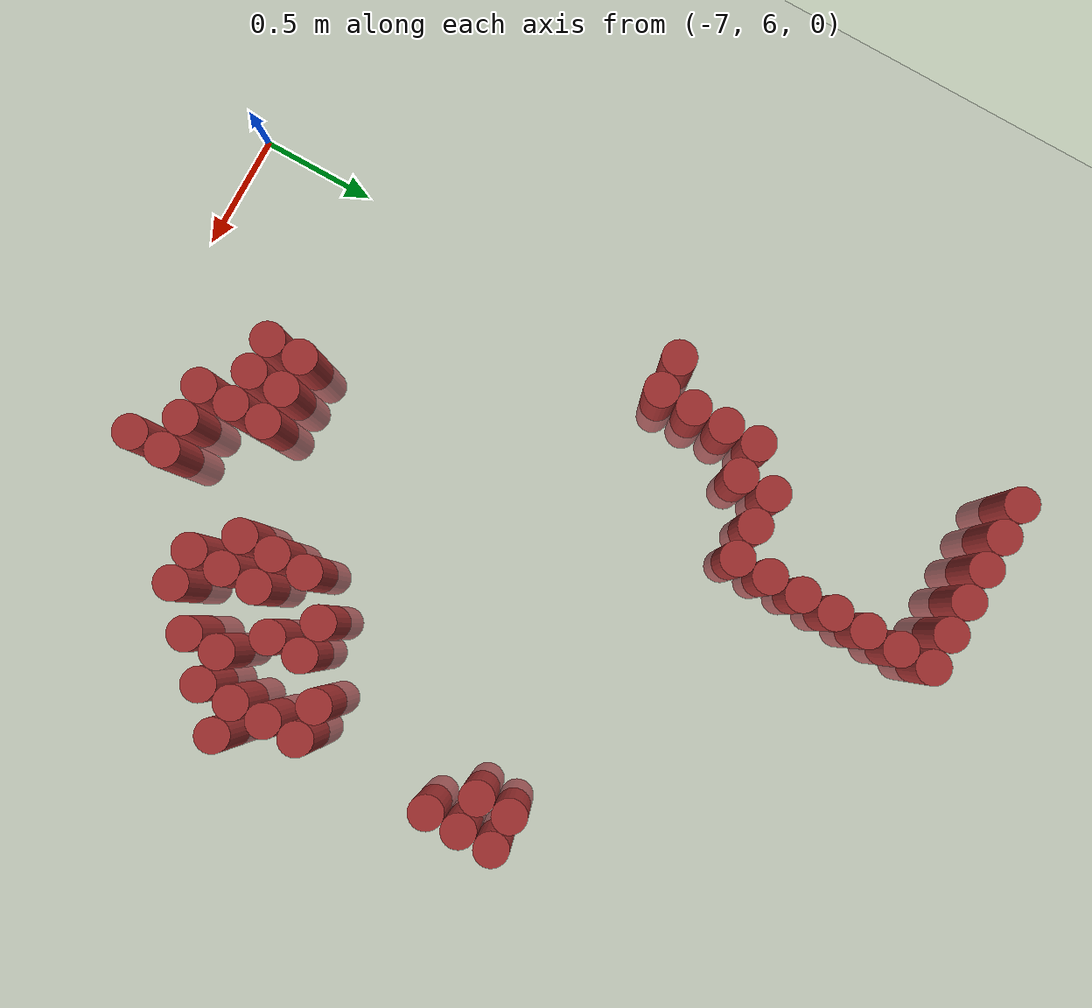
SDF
<sdf version="1.6">
 <world name="default">
  <model name="ground_plane">
   <static>1</static>
   <link name="link">
    <collision name="collision">
     <geometry><plane><normal>0 0 1</normal><size>100 100</size></plane></geometry>
     <surface><friction><ode><mu>100</mu><mu2>50</mu2></ode></friction></surface>
    </collision>
    <visual name="visual">
     <cast_shadows>0</cast_shadows>
     <geometry><plane><normal>0 0 1</normal><size>100 100</size></plane></geometry>
     <material>
      <script><uri>file://media/materials/scripts/gazebo.material</uri><name>Gazebo/Grey</name></script>
     </material>
    </visual>
   </link>
  </model>
  <model name="unit_cylinder_197">
   <static>1</static>
   <pose>-7.125000 9.525000 0.000000 0.000000 0.000000 0.000000</pose>
   <link name="link">
    <inertial>
     <mass>1</mass>
     <inertia><ixx>0.145833</ixx><ixy>0</ixy><ixz>0</ixz><iyy>0.145833</iyy><iyz>0</iyz><izz>0.125</izz></inertia>
    </inertial>
    <collision name="collision">
     <geometry><cylinder><radius>0.075000</radius><length>1</length></cylinder></geometry>
    </collision>
    <visual name="visual">
     <geometry><cylinder><radius>0.075000</radius><length>1</length></cylinder></geometry>
     <material>
      <ambient>0.648000 0.192000 0.192000 1</ambient>
      <diffuse>0.648000 0.192000 0.192000 1</diffuse>
     </material>
     <material>
      <script><name>Gazebo/Grey</name><uri>file://media/materials/scripts/gazebo.material</uri></script>
     </material>
    </visual>
   </link>
  </model>
  <model name="unit_cylinder_202">
   <static>1</static>
   <pose>-6.975000 8.025000 0.000000 0.000000 0.000000 0.000000</pose>
   <link name="link">
    <inertial>
     <mass>1</mass>
     <inertia><ixx>0.145833</ixx><ixy>0</ixy><ixz>0</ixz><iyy>0.145833</iyy><iyz>0</iyz><izz>0.125</izz></inertia>
    </inertial>
    <collision name="collision">
     <geometry><cylinder><radius>0.075000</radius><length>1</length></cylinder></geometry>
    </collision>
    <visual name="visual">
     <geometry><cylinder><radius>0.075000</radius><length>1</length></cylinder></geometry>
     <material>
      <ambient>0.648000 0.192000 0.192000 1</ambient>
      <diffuse>0.648000 0.192000 0.192000 1</diffuse>
     </material>
     <material>
      <script><name>Gazebo/Grey</name><uri>file://media/materials/scripts/gazebo.material</uri></script>
     </material>
    </visual>
   </link>
  </model>
  <model name="unit_cylinder_203">
   <static>1</static>
   <pose>-6.975000 9.525000 0.000000 0.000000 0.000000 0.000000</pose>
   <link name="link">
    <inertial>
     <mass>1</mass>
     <inertia><ixx>0.145833</ixx><ixy>0</ixy><ixz>0</ixz><iyy>0.145833</iyy><iyz>0</iyz><izz>0.125</izz></inertia>
    </inertial>
    <collision name="collision">
     <geometry><cylinder><radius>0.075000</radius><length>1</length></cylinder></geometry>
    </collision>
    <visual name="visual">
     <geometry><cylinder><radius>0.075000</radius><length>1</length></cylinder></geometry>
     <material>
      <ambient>0.648000 0.192000 0.192000 1</ambient>
      <diffuse>0.648000 0.192000 0.192000 1</diffuse>
     </material>
     <material>
      <script><name>Gazebo/Grey</name><uri>file://media/materials/scripts/gazebo.material</uri></script>
     </material>
    </visual>
   </link>
  </model>
  <model name="unit_cylinder_209">
   <static>1</static>
   <pose>-6.825000 8.025000 0.000000 0.000000 0.000000 0.000000</pose>
   <link name="link">
    <inertial>
     <mass>1</mass>
     <inertia><ixx>0.145833</ixx><ixy>0</ixy><ixz>0</ixz><iyy>0.145833</iyy><iyz>0</iyz><izz>0.125</izz></inertia>
    </inertial>
    <collision name="collision">
     <geometry><cylinder><radius>0.075000</radius><length>1</length></cylinder></geometry>
    </collision>
    <visual name="visual">
     <geometry><cylinder><radius>0.075000</radius><length>1</length></cylinder></geometry>
     <material>
      <ambient>0.648000 0.192000 0.192000 1</ambient>
      <diffuse>0.648000 0.192000 0.192000 1</diffuse>
     </material>
     <material>
      <script><name>Gazebo/Grey</name><uri>file://media/materials/scripts/gazebo.material</uri></script>
     </material>
    </visual>
   </link>
  </model>
  <model name="unit_cylinder_210">
   <static>1</static>
   <pose>-6.825000 8.175000 0.000000 0.000000 0.000000 0.000000</pose>
   <link name="link">
    <inertial>
     <mass>1</mass>
     <inertia><ixx>0.145833</ixx><ixy>0</ixy><ixz>0</ixz><iyy>0.145833</iyy><iyz>0</iyz><izz>0.125</izz></inertia>
    </inertial>
    <collision name="collision">
     <geometry><cylinder><radius>0.075000</radius><length>1</length></cylinder></geometry>
    </collision>
    <visual name="visual">
     <geometry><cylinder><radius>0.075000</radius><length>1</length></cylinder></geometry>
     <material>
      <ambient>0.648000 0.192000 0.192000 1</ambient>
      <diffuse>0.648000 0.192000 0.192000 1</diffuse>
     </material>
     <material>
      <script><name>Gazebo/Grey</name><uri>file://media/materials/scripts/gazebo.material</uri></script>
     </material>
    </visual>
   </link>
  </model>
  <model name="unit_cylinder_211">
   <static>1</static>
   <pose>-6.825000 8.325000 0.000000 0.000000 0.000000 0.000000</pose>
   <link name="link">
    <inertial>
     <mass>1</mass>
     <inertia><ixx>0.145833</ixx><ixy>0</ixy><ixz>0</ixz><iyy>0.145833</iyy><iyz>0</iyz><izz>0.125</izz></inertia>
    </inertial>
    <collision name="collision">
     <geometry><cylinder><radius>0.075000</radius><length>1</length></cylinder></geometry>
    </collision>
    <visual name="visual">
     <geometry><cylinder><radius>0.075000</radius><length>1</length></cylinder></geometry>
     <material>
      <ambient>0.648000 0.192000 0.192000 1</ambient>
      <diffuse>0.648000 0.192000 0.192000 1</diffuse>
     </material>
     <material>
      <script><name>Gazebo/Grey</name><uri>file://media/materials/scripts/gazebo.material</uri></script>
     </material>
    </visual>
   </link>
  </model>
  <model name="unit_cylinder_212">
   <static>1</static>
   <pose>-6.825000 8.475000 0.000000 0.000000 0.000000 0.000000</pose>
   <link name="link">
    <inertial>
     <mass>1</mass>
     <inertia><ixx>0.145833</ixx><ixy>0</ixy><ixz>0</ixz><iyy>0.145833</iyy><iyz>0</iyz><izz>0.125</izz></inertia>
    </inertial>
    <collision name="collision">
     <geometry><cylinder><radius>0.075000</radius><length>1</length></cylinder></geometry>
    </collision>
    <visual name="visual">
     <geometry><cylinder><radius>0.075000</radius><length>1</length></cylinder></geometry>
     <material>
      <ambient>0.648000 0.192000 0.192000 1</ambient>
      <diffuse>0.648000 0.192000 0.192000 1</diffuse>
     </material>
     <material>
      <script><name>Gazebo/Grey</name><uri>file://media/materials/scripts/gazebo.material</uri></script>
     </material>
    </visual>
   </link>
  </model>
  <model name="unit_cylinder_213">
   <static>1</static>
   <pose>-6.825000 9.525000 0.000000 0.000000 0.000000 0.000000</pose>
   <link name="link">
    <inertial>
     <mass>1</mass>
     <inertia><ixx>0.145833</ixx><ixy>0</ixy><ixz>0</ixz><iyy>0.145833</iyy><iyz>0</iyz><izz>0.125</izz></inertia>
    </inertial>
    <collision name="collision">
     <geometry><cylinder><radius>0.075000</radius><length>1</length></cylinder></geometry>
    </collision>
    <visual name="visual">
     <geometry><cylinder><radius>0.075000</radius><length>1</length></cylinder></geometry>
     <material>
      <ambient>0.648000 0.192000 0.192000 1</ambient>
      <diffuse>0.648000 0.192000 0.192000 1</diffuse>
     </material>
     <material>
      <script><name>Gazebo/Grey</name><uri>file://media/materials/scripts/gazebo.material</uri></script>
     </material>
    </visual>
   </link>
  </model>
  <model name="unit_cylinder_218">
   <static>1</static>
   <pose>-6.675000 8.475000 0.000000 0.000000 0.000000 0.000000</pose>
   <link name="link">
    <inertial>
     <mass>1</mass>
     <inertia><ixx>0.145833</ixx><ixy>0</ixy><ixz>0</ixz><iyy>0.145833</iyy><iyz>0</iyz><izz>0.125</izz></inertia>
    </inertial>
    <collision name="collision">
     <geometry><cylinder><radius>0.075000</radius><length>1</length></cylinder></geometry>
    </collision>
    <visual name="visual">
     <geometry><cylinder><radius>0.075000</radius><length>1</length></cylinder></geometry>
     <material>
      <ambient>0.648000 0.192000 0.192000 1</ambient>
      <diffuse>0.648000 0.192000 0.192000 1</diffuse>
     </material>
     <material>
      <script><name>Gazebo/Grey</name><uri>file://media/materials/scripts/gazebo.material</uri></script>
     </material>
    </visual>
   </link>
  </model>
  <model name="unit_cylinder_219">
   <static>1</static>
   <pose>-6.675000 8.625000 0.000000 0.000000 0.000000 0.000000</pose>
   <link name="link">
    <inertial>
     <mass>1</mass>
     <inertia><ixx>0.145833</ixx><ixy>0</ixy><ixz>0</ixz><iyy>0.145833</iyy><iyz>0</iyz><izz>0.125</izz></inertia>
    </inertial>
    <collision name="collision">
     <geometry><cylinder><radius>0.075000</radius><length>1</length></cylinder></geometry>
    </collision>
    <visual name="visual">
     <geometry><cylinder><radius>0.075000</radius><length>1</length></cylinder></geometry>
     <material>
      <ambient>0.648000 0.192000 0.192000 1</ambient>
      <diffuse>0.648000 0.192000 0.192000 1</diffuse>
     </material>
     <material>
      <script><name>Gazebo/Grey</name><uri>file://media/materials/scripts/gazebo.material</uri></script>
     </material>
    </visual>
   </link>
  </model>
  <model name="unit_cylinder_220">
   <static>1</static>
   <pose>-6.675000 9.525000 0.000000 0.000000 0.000000 0.000000</pose>
   <link name="link">
    <inertial>
     <mass>1</mass>
     <inertia><ixx>0.145833</ixx><ixy>0</ixy><ixz>0</ixz><iyy>0.145833</iyy><iyz>0</iyz><izz>0.125</izz></inertia>
    </inertial>
    <collision name="collision">
     <geometry><cylinder><radius>0.075000</radius><length>1</length></cylinder></geometry>
    </collision>
    <visual name="visual">
     <geometry><cylinder><radius>0.075000</radius><length>1</length></cylinder></geometry>
     <material>
      <ambient>0.648000 0.192000 0.192000 1</ambient>
      <diffuse>0.648000 0.192000 0.192000 1</diffuse>
     </material>
     <material>
      <script><name>Gazebo/Grey</name><uri>file://media/materials/scripts/gazebo.material</uri></script>
     </material>
    </visual>
   </link>
  </model>
  <model name="unit_cylinder_224">
   <static>1</static>
   <pose>-6.525000 8.625000 0.000000 0.000000 0.000000 0.000000</pose>
   <link name="link">
    <inertial>
     <mass>1</mass>
     <inertia><ixx>0.145833</ixx><ixy>0</ixy><ixz>0</ixz><iyy>0.145833</iyy><iyz>0</iyz><izz>0.125</izz></inertia>
    </inertial>
    <collision name="collision">
     <geometry><cylinder><radius>0.075000</radius><length>1</length></cylinder></geometry>
    </collision>
    <visual name="visual">
     <geometry><cylinder><radius>0.075000</radius><length>1</length></cylinder></geometry>
     <material>
      <ambient>0.648000 0.192000 0.192000 1</ambient>
      <diffuse>0.648000 0.192000 0.192000 1</diffuse>
     </material>
     <material>
      <script><name>Gazebo/Grey</name><uri>file://media/materials/scripts/gazebo.material</uri></script>
     </material>
    </visual>
   </link>
  </model>
  <model name="unit_cylinder_225">
   <static>1</static>
   <pose>-6.525000 9.525000 0.000000 0.000000 0.000000 0.000000</pose>
   <link name="link">
    <inertial>
     <mass>1</mass>
     <inertia><ixx>0.145833</ixx><ixy>0</ixy><ixz>0</ixz><iyy>0.145833</iyy><iyz>0</iyz><izz>0.125</izz></inertia>
    </inertial>
    <collision name="collision">
     <geometry><cylinder><radius>0.075000</radius><length>1</length></cylinder></geometry>
    </collision>
    <visual name="visual">
     <geometry><cylinder><radius>0.075000</radius><length>1</length></cylinder></geometry>
     <material>
      <ambient>0.648000 0.192000 0.192000 1</ambient>
      <diffuse>0.648000 0.192000 0.192000 1</diffuse>
     </material>
     <material>
      <script><name>Gazebo/Grey</name><uri>file://media/materials/scripts/gazebo.material</uri></script>
     </material>
    </visual>
   </link>
  </model>
  <model name="unit_cylinder_229">
   <static>1</static>
   <pose>-6.375000 8.625000 0.000000 0.000000 0.000000 0.000000</pose>
   <link name="link">
    <inertial>
     <mass>1</mass>
     <inertia><ixx>0.145833</ixx><ixy>0</ixy><ixz>0</ixz><iyy>0.145833</iyy><iyz>0</iyz><izz>0.125</izz></inertia>
    </inertial>
    <collision name="collision">
     <geometry><cylinder><radius>0.075000</radius><length>1</length></cylinder></geometry>
    </collision>
    <visual name="visual">
     <geometry><cylinder><radius>0.075000</radius><length>1</length></cylinder></geometry>
     <material>
      <ambient>0.648000 0.192000 0.192000 1</ambient>
      <diffuse>0.648000 0.192000 0.192000 1</diffuse>
     </material>
     <material>
      <script><name>Gazebo/Grey</name><uri>file://media/materials/scripts/gazebo.material</uri></script>
     </material>
    </visual>
   </link>
  </model>
  <model name="unit_cylinder_230">
   <static>1</static>
   <pose>-6.375000 8.775000 0.000000 0.000000 0.000000 0.000000</pose>
   <link name="link">
    <inertial>
     <mass>1</mass>
     <inertia><ixx>0.145833</ixx><ixy>0</ixy><ixz>0</ixz><iyy>0.145833</iyy><iyz>0</iyz><izz>0.125</izz></inertia>
    </inertial>
    <collision name="collision">
     <geometry><cylinder><radius>0.075000</radius><length>1</length></cylinder></geometry>
    </collision>
    <visual name="visual">
     <geometry><cylinder><radius>0.075000</radius><length>1</length></cylinder></geometry>
     <material>
      <ambient>0.648000 0.192000 0.192000 1</ambient>
      <diffuse>0.648000 0.192000 0.192000 1</diffuse>
     </material>
     <material>
      <script><name>Gazebo/Grey</name><uri>file://media/materials/scripts/gazebo.material</uri></script>
     </material>
    </visual>
   </link>
  </model>
  <model name="unit_cylinder_231">
   <static>1</static>
   <pose>-6.375000 8.925000 0.000000 0.000000 0.000000 0.000000</pose>
   <link name="link">
    <inertial>
     <mass>1</mass>
     <inertia><ixx>0.145833</ixx><ixy>0</ixy><ixz>0</ixz><iyy>0.145833</iyy><iyz>0</iyz><izz>0.125</izz></inertia>
    </inertial>
    <collision name="collision">
     <geometry><cylinder><radius>0.075000</radius><length>1</length></cylinder></geometry>
    </collision>
    <visual name="visual">
     <geometry><cylinder><radius>0.075000</radius><length>1</length></cylinder></geometry>
     <material>
      <ambient>0.648000 0.192000 0.192000 1</ambient>
      <diffuse>0.648000 0.192000 0.192000 1</diffuse>
     </material>
     <material>
      <script><name>Gazebo/Grey</name><uri>file://media/materials/scripts/gazebo.material</uri></script>
     </material>
    </visual>
   </link>
  </model>
  <model name="unit_cylinder_232">
   <static>1</static>
   <pose>-6.375000 9.075000 0.000000 0.000000 0.000000 0.000000</pose>
   <link name="link">
    <inertial>
     <mass>1</mass>
     <inertia><ixx>0.145833</ixx><ixy>0</ixy><ixz>0</ixz><iyy>0.145833</iyy><iyz>0</iyz><izz>0.125</izz></inertia>
    </inertial>
    <collision name="collision">
     <geometry><cylinder><radius>0.075000</radius><length>1</length></cylinder></geometry>
    </collision>
    <visual name="visual">
     <geometry><cylinder><radius>0.075000</radius><length>1</length></cylinder></geometry>
     <material>
      <ambient>0.648000 0.192000 0.192000 1</ambient>
      <diffuse>0.648000 0.192000 0.192000 1</diffuse>
     </material>
     <material>
      <script><name>Gazebo/Grey</name><uri>file://media/materials/scripts/gazebo.material</uri></script>
     </material>
    </visual>
   </link>
  </model>
  <model name="unit_cylinder_233">
   <static>1</static>
   <pose>-6.375000 9.225000 0.000000 0.000000 0.000000 0.000000</pose>
   <link name="link">
    <inertial>
     <mass>1</mass>
     <inertia><ixx>0.145833</ixx><ixy>0</ixy><ixz>0</ixz><iyy>0.145833</iyy><iyz>0</iyz><izz>0.125</izz></inertia>
    </inertial>
    <collision name="collision">
     <geometry><cylinder><radius>0.075000</radius><length>1</length></cylinder></geometry>
    </collision>
    <visual name="visual">
     <geometry><cylinder><radius>0.075000</radius><length>1</length></cylinder></geometry>
     <material>
      <ambient>0.648000 0.192000 0.192000 1</ambient>
      <diffuse>0.648000 0.192000 0.192000 1</diffuse>
     </material>
     <material>
      <script><name>Gazebo/Grey</name><uri>file://media/materials/scripts/gazebo.material</uri></script>
     </material>
    </visual>
   </link>
  </model>
  <model name="unit_cylinder_234">
   <static>1</static>
   <pose>-6.375000 9.375000 0.000000 0.000000 0.000000 0.000000</pose>
   <link name="link">
    <inertial>
     <mass>1</mass>
     <inertia><ixx>0.145833</ixx><ixy>0</ixy><ixz>0</ixz><iyy>0.145833</iyy><iyz>0</iyz><izz>0.125</izz></inertia>
    </inertial>
    <collision name="collision">
     <geometry><cylinder><radius>0.075000</radius><length>1</length></cylinder></geometry>
    </collision>
    <visual name="visual">
     <geometry><cylinder><radius>0.075000</radius><length>1</length></cylinder></geometry>
     <material>
      <ambient>0.648000 0.192000 0.192000 1</ambient>
      <diffuse>0.648000 0.192000 0.192000 1</diffuse>
     </material>
     <material>
      <script><name>Gazebo/Grey</name><uri>file://media/materials/scripts/gazebo.material</uri></script>
     </material>
    </visual>
   </link>
  </model>
  <model name="unit_cylinder_235">
   <static>1</static>
   <pose>-6.375000 9.525000 0.000000 0.000000 0.000000 0.000000</pose>
   <link name="link">
    <inertial>
     <mass>1</mass>
     <inertia><ixx>0.145833</ixx><ixy>0</ixy><ixz>0</ixz><iyy>0.145833</iyy><iyz>0</iyz><izz>0.125</izz></inertia>
    </inertial>
    <collision name="collision">
     <geometry><cylinder><radius>0.075000</radius><length>1</length></cylinder></geometry>
    </collision>
    <visual name="visual">
     <geometry><cylinder><radius>0.075000</radius><length>1</length></cylinder></geometry>
     <material>
      <ambient>0.648000 0.192000 0.192000 1</ambient>
      <diffuse>0.648000 0.192000 0.192000 1</diffuse>
     </material>
     <material>
      <script><name>Gazebo/Grey</name><uri>file://media/materials/scripts/gazebo.material</uri></script>
     </material>
    </visual>
   </link>
  </model>
  <model name="unit_cylinder_236">
   <static>1</static>
   <pose>-6.225000 6.525000 0.000000 0.000000 0.000000 0.000000</pose>
   <link name="link">
    <inertial>
     <mass>1</mass>
     <inertia><ixx>0.145833</ixx><ixy>0</ixy><ixz>0</ixz><iyy>0.145833</iyy><iyz>0</iyz><izz>0.125</izz></inertia>
    </inertial>
    <collision name="collision">
     <geometry><cylinder><radius>0.075000</radius><length>1</length></cylinder></geometry>
    </collision>
    <visual name="visual">
     <geometry><cylinder><radius>0.075000</radius><length>1</length></cylinder></geometry>
     <material>
      <ambient>0.648000 0.192000 0.192000 1</ambient>
      <diffuse>0.648000 0.192000 0.192000 1</diffuse>
     </material>
     <material>
      <script><name>Gazebo/Grey</name><uri>file://media/materials/scripts/gazebo.material</uri></script>
     </material>
    </visual>
   </link>
  </model>
  <model name="unit_cylinder_237">
   <static>1</static>
   <pose>-6.225000 6.675000 0.000000 0.000000 0.000000 0.000000</pose>
   <link name="link">
    <inertial>
     <mass>1</mass>
     <inertia><ixx>0.145833</ixx><ixy>0</ixy><ixz>0</ixz><iyy>0.145833</iyy><iyz>0</iyz><izz>0.125</izz></inertia>
    </inertial>
    <collision name="collision">
     <geometry><cylinder><radius>0.075000</radius><length>1</length></cylinder></geometry>
    </collision>
    <visual name="visual">
     <geometry><cylinder><radius>0.075000</radius><length>1</length></cylinder></geometry>
     <material>
      <ambient>0.648000 0.192000 0.192000 1</ambient>
      <diffuse>0.648000 0.192000 0.192000 1</diffuse>
     </material>
     <material>
      <script><name>Gazebo/Grey</name><uri>file://media/materials/scripts/gazebo.material</uri></script>
     </material>
    </visual>
   </link>
  </model>
  <model name="unit_cylinder_238">
   <static>1</static>
   <pose>-6.075000 6.525000 0.000000 0.000000 0.000000 0.000000</pose>
   <link name="link">
    <inertial>
     <mass>1</mass>
     <inertia><ixx>0.145833</ixx><ixy>0</ixy><ixz>0</ixz><iyy>0.145833</iyy><iyz>0</iyz><izz>0.125</izz></inertia>
    </inertial>
    <collision name="collision">
     <geometry><cylinder><radius>0.075000</radius><length>1</length></cylinder></geometry>
    </collision>
    <visual name="visual">
     <geometry><cylinder><radius>0.075000</radius><length>1</length></cylinder></geometry>
     <material>
      <ambient>0.648000 0.192000 0.192000 1</ambient>
      <diffuse>0.648000 0.192000 0.192000 1</diffuse>
     </material>
     <material>
      <script><name>Gazebo/Grey</name><uri>file://media/materials/scripts/gazebo.material</uri></script>
     </material>
    </visual>
   </link>
  </model>
  <model name="unit_cylinder_239">
   <static>1</static>
   <pose>-6.075000 6.675000 0.000000 0.000000 0.000000 0.000000</pose>
   <link name="link">
    <inertial>
     <mass>1</mass>
     <inertia><ixx>0.145833</ixx><ixy>0</ixy><ixz>0</ixz><iyy>0.145833</iyy><iyz>0</iyz><izz>0.125</izz></inertia>
    </inertial>
    <collision name="collision">
     <geometry><cylinder><radius>0.075000</radius><length>1</length></cylinder></geometry>
    </collision>
    <visual name="visual">
     <geometry><cylinder><radius>0.075000</radius><length>1</length></cylinder></geometry>
     <material>
      <ambient>0.648000 0.192000 0.192000 1</ambient>
      <diffuse>0.648000 0.192000 0.192000 1</diffuse>
     </material>
     <material>
      <script><name>Gazebo/Grey</name><uri>file://media/materials/scripts/gazebo.material</uri></script>
     </material>
    </visual>
   </link>
  </model>
  <model name="unit_cylinder_240">
   <static>1</static>
   <pose>-5.925000 6.375000 0.000000 0.000000 0.000000 0.000000</pose>
   <link name="link">
    <inertial>
     <mass>1</mass>
     <inertia><ixx>0.145833</ixx><ixy>0</ixy><ixz>0</ixz><iyy>0.145833</iyy><iyz>0</iyz><izz>0.125</izz></inertia>
    </inertial>
    <collision name="collision">
     <geometry><cylinder><radius>0.075000</radius><length>1</length></cylinder></geometry>
    </collision>
    <visual name="visual">
     <geometry><cylinder><radius>0.075000</radius><length>1</length></cylinder></geometry>
     <material>
      <ambient>0.648000 0.192000 0.192000 1</ambient>
      <diffuse>0.648000 0.192000 0.192000 1</diffuse>
     </material>
     <material>
      <script><name>Gazebo/Grey</name><uri>file://media/materials/scripts/gazebo.material</uri></script>
     </material>
    </visual>
   </link>
  </model>
  <model name="unit_cylinder_241">
   <static>1</static>
   <pose>-5.925000 6.525000 0.000000 0.000000 0.000000 0.000000</pose>
   <link name="link">
    <inertial>
     <mass>1</mass>
     <inertia><ixx>0.145833</ixx><ixy>0</ixy><ixz>0</ixz><iyy>0.145833</iyy><iyz>0</iyz><izz>0.125</izz></inertia>
    </inertial>
    <collision name="collision">
     <geometry><cylinder><radius>0.075000</radius><length>1</length></cylinder></geometry>
    </collision>
    <visual name="visual">
     <geometry><cylinder><radius>0.075000</radius><length>1</length></cylinder></geometry>
     <material>
      <ambient>0.648000 0.192000 0.192000 1</ambient>
      <diffuse>0.648000 0.192000 0.192000 1</diffuse>
     </material>
     <material>
      <script><name>Gazebo/Grey</name><uri>file://media/materials/scripts/gazebo.material</uri></script>
     </material>
    </visual>
   </link>
  </model>
  <model name="unit_cylinder_242">
   <static>1</static>
   <pose>-5.925000 6.675000 0.000000 0.000000 0.000000 0.000000</pose>
   <link name="link">
    <inertial>
     <mass>1</mass>
     <inertia><ixx>0.145833</ixx><ixy>0</ixy><ixz>0</ixz><iyy>0.145833</iyy><iyz>0</iyz><izz>0.125</izz></inertia>
    </inertial>
    <collision name="collision">
     <geometry><cylinder><radius>0.075000</radius><length>1</length></cylinder></geometry>
    </collision>
    <visual name="visual">
     <geometry><cylinder><radius>0.075000</radius><length>1</length></cylinder></geometry>
     <material>
      <ambient>0.648000 0.192000 0.192000 1</ambient>
      <diffuse>0.648000 0.192000 0.192000 1</diffuse>
     </material>
     <material>
      <script><name>Gazebo/Grey</name><uri>file://media/materials/scripts/gazebo.material</uri></script>
     </material>
    </visual>
   </link>
  </model>
  <model name="unit_cylinder_245">
   <static>1</static>
   <pose>-5.775000 6.375000 0.000000 0.000000 0.000000 0.000000</pose>
   <link name="link">
    <inertial>
     <mass>1</mass>
     <inertia><ixx>0.145833</ixx><ixy>0</ixy><ixz>0</ixz><iyy>0.145833</iyy><iyz>0</iyz><izz>0.125</izz></inertia>
    </inertial>
    <collision name="collision">
     <geometry><cylinder><radius>0.075000</radius><length>1</length></cylinder></geometry>
    </collision>
    <visual name="visual">
     <geometry><cylinder><radius>0.075000</radius><length>1</length></cylinder></geometry>
     <material>
      <ambient>0.648000 0.192000 0.192000 1</ambient>
      <diffuse>0.648000 0.192000 0.192000 1</diffuse>
     </material>
     <material>
      <script><name>Gazebo/Grey</name><uri>file://media/materials/scripts/gazebo.material</uri></script>
     </material>
    </visual>
   </link>
  </model>
  <model name="unit_cylinder_247">
   <static>1</static>
   <pose>-5.625000 6.225000 0.000000 0.000000 0.000000 0.000000</pose>
   <link name="link">
    <inertial>
     <mass>1</mass>
     <inertia><ixx>0.145833</ixx><ixy>0</ixy><ixz>0</ixz><iyy>0.145833</iyy><iyz>0</iyz><izz>0.125</izz></inertia>
    </inertial>
    <collision name="collision">
     <geometry><cylinder><radius>0.075000</radius><length>1</length></cylinder></geometry>
    </collision>
    <visual name="visual">
     <geometry><cylinder><radius>0.075000</radius><length>1</length></cylinder></geometry>
     <material>
      <ambient>0.648000 0.192000 0.192000 1</ambient>
      <diffuse>0.648000 0.192000 0.192000 1</diffuse>
     </material>
     <material>
      <script><name>Gazebo/Grey</name><uri>file://media/materials/scripts/gazebo.material</uri></script>
     </material>
    </visual>
   </link>
  </model>
  <model name="unit_cylinder_248">
   <static>1</static>
   <pose>-5.625000 6.375000 0.000000 0.000000 0.000000 0.000000</pose>
   <link name="link">
    <inertial>
     <mass>1</mass>
     <inertia><ixx>0.145833</ixx><ixy>0</ixy><ixz>0</ixz><iyy>0.145833</iyy><iyz>0</iyz><izz>0.125</izz></inertia>
    </inertial>
    <collision name="collision">
     <geometry><cylinder><radius>0.075000</radius><length>1</length></cylinder></geometry>
    </collision>
    <visual name="visual">
     <geometry><cylinder><radius>0.075000</radius><length>1</length></cylinder></geometry>
     <material>
      <ambient>0.648000 0.192000 0.192000 1</ambient>
      <diffuse>0.648000 0.192000 0.192000 1</diffuse>
     </material>
     <material>
      <script><name>Gazebo/Grey</name><uri>file://media/materials/scripts/gazebo.material</uri></script>
     </material>
    </visual>
   </link>
  </model>
  <model name="unit_cylinder_249">
   <static>1</static>
   <pose>-5.475000 6.825000 0.000000 0.000000 0.000000 0.000000</pose>
   <link name="link">
    <inertial>
     <mass>1</mass>
     <inertia><ixx>0.145833</ixx><ixy>0</ixy><ixz>0</ixz><iyy>0.145833</iyy><iyz>0</iyz><izz>0.125</izz></inertia>
    </inertial>
    <collision name="collision">
     <geometry><cylinder><radius>0.075000</radius><length>1</length></cylinder></geometry>
    </collision>
    <visual name="visual">
     <geometry><cylinder><radius>0.075000</radius><length>1</length></cylinder></geometry>
     <material>
      <ambient>0.648000 0.192000 0.192000 1</ambient>
      <diffuse>0.648000 0.192000 0.192000 1</diffuse>
     </material>
     <material>
      <script><name>Gazebo/Grey</name><uri>file://media/materials/scripts/gazebo.material</uri></script>
     </material>
    </visual>
   </link>
  </model>
  <model name="unit_cylinder_250">
   <static>1</static>
   <pose>-5.475000 6.975000 0.000000 0.000000 0.000000 0.000000</pose>
   <link name="link">
    <inertial>
     <mass>1</mass>
     <inertia><ixx>0.145833</ixx><ixy>0</ixy><ixz>0</ixz><iyy>0.145833</iyy><iyz>0</iyz><izz>0.125</izz></inertia>
    </inertial>
    <collision name="collision">
     <geometry><cylinder><radius>0.075000</radius><length>1</length></cylinder></geometry>
    </collision>
    <visual name="visual">
     <geometry><cylinder><radius>0.075000</radius><length>1</length></cylinder></geometry>
     <material>
      <ambient>0.648000 0.192000 0.192000 1</ambient>
      <diffuse>0.648000 0.192000 0.192000 1</diffuse>
     </material>
     <material>
      <script><name>Gazebo/Grey</name><uri>file://media/materials/scripts/gazebo.material</uri></script>
     </material>
    </visual>
   </link>
  </model>
  <model name="unit_cylinder_251">
   <static>1</static>
   <pose>-5.475000 7.125000 0.000000 0.000000 0.000000 0.000000</pose>
   <link name="link">
    <inertial>
     <mass>1</mass>
     <inertia><ixx>0.145833</ixx><ixy>0</ixy><ixz>0</ixz><iyy>0.145833</iyy><iyz>0</iyz><izz>0.125</izz></inertia>
    </inertial>
    <collision name="collision">
     <geometry><cylinder><radius>0.075000</radius><length>1</length></cylinder></geometry>
    </collision>
    <visual name="visual">
     <geometry><cylinder><radius>0.075000</radius><length>1</length></cylinder></geometry>
     <material>
      <ambient>0.648000 0.192000 0.192000 1</ambient>
      <diffuse>0.648000 0.192000 0.192000 1</diffuse>
     </material>
     <material>
      <script><name>Gazebo/Grey</name><uri>file://media/materials/scripts/gazebo.material</uri></script>
     </material>
    </visual>
   </link>
  </model>
  <model name="unit_cylinder_252">
   <static>1</static>
   <pose>-5.325000 6.675000 0.000000 0.000000 0.000000 0.000000</pose>
   <link name="link">
    <inertial>
     <mass>1</mass>
     <inertia><ixx>0.145833</ixx><ixy>0</ixy><ixz>0</ixz><iyy>0.145833</iyy><iyz>0</iyz><izz>0.125</izz></inertia>
    </inertial>
    <collision name="collision">
     <geometry><cylinder><radius>0.075000</radius><length>1</length></cylinder></geometry>
    </collision>
    <visual name="visual">
     <geometry><cylinder><radius>0.075000</radius><length>1</length></cylinder></geometry>
     <material>
      <ambient>0.648000 0.192000 0.192000 1</ambient>
      <diffuse>0.648000 0.192000 0.192000 1</diffuse>
     </material>
     <material>
      <script><name>Gazebo/Grey</name><uri>file://media/materials/scripts/gazebo.material</uri></script>
     </material>
    </visual>
   </link>
  </model>
  <model name="unit_cylinder_253">
   <static>1</static>
   <pose>-5.325000 6.825000 0.000000 0.000000 0.000000 0.000000</pose>
   <link name="link">
    <inertial>
     <mass>1</mass>
     <inertia><ixx>0.145833</ixx><ixy>0</ixy><ixz>0</ixz><iyy>0.145833</iyy><iyz>0</iyz><izz>0.125</izz></inertia>
    </inertial>
    <collision name="collision">
     <geometry><cylinder><radius>0.075000</radius><length>1</length></cylinder></geometry>
    </collision>
    <visual name="visual">
     <geometry><cylinder><radius>0.075000</radius><length>1</length></cylinder></geometry>
     <material>
      <ambient>0.648000 0.192000 0.192000 1</ambient>
      <diffuse>0.648000 0.192000 0.192000 1</diffuse>
     </material>
     <material>
      <script><name>Gazebo/Grey</name><uri>file://media/materials/scripts/gazebo.material</uri></script>
     </material>
    </visual>
   </link>
  </model>
  <model name="unit_cylinder_254">
   <static>1</static>
   <pose>-5.325000 6.975000 0.000000 0.000000 0.000000 0.000000</pose>
   <link name="link">
    <inertial>
     <mass>1</mass>
     <inertia><ixx>0.145833</ixx><ixy>0</ixy><ixz>0</ixz><iyy>0.145833</iyy><iyz>0</iyz><izz>0.125</izz></inertia>
    </inertial>
    <collision name="collision">
     <geometry><cylinder><radius>0.075000</radius><length>1</length></cylinder></geometry>
    </collision>
    <visual name="visual">
     <geometry><cylinder><radius>0.075000</radius><length>1</length></cylinder></geometry>
     <material>
      <ambient>0.648000 0.192000 0.192000 1</ambient>
      <diffuse>0.648000 0.192000 0.192000 1</diffuse>
     </material>
     <material>
      <script><name>Gazebo/Grey</name><uri>file://media/materials/scripts/gazebo.material</uri></script>
     </material>
    </visual>
   </link>
  </model>
  <model name="unit_cylinder_255">
   <static>1</static>
   <pose>-5.325000 7.275000 0.000000 0.000000 0.000000 0.000000</pose>
   <link name="link">
    <inertial>
     <mass>1</mass>
     <inertia><ixx>0.145833</ixx><ixy>0</ixy><ixz>0</ixz><iyy>0.145833</iyy><iyz>0</iyz><izz>0.125</izz></inertia>
    </inertial>
    <collision name="collision">
     <geometry><cylinder><radius>0.075000</radius><length>1</length></cylinder></geometry>
    </collision>
    <visual name="visual">
     <geometry><cylinder><radius>0.075000</radius><length>1</length></cylinder></geometry>
     <material>
      <ambient>0.648000 0.192000 0.192000 1</ambient>
      <diffuse>0.648000 0.192000 0.192000 1</diffuse>
     </material>
     <material>
      <script><name>Gazebo/Grey</name><uri>file://media/materials/scripts/gazebo.material</uri></script>
     </material>
    </visual>
   </link>
  </model>
  <model name="unit_cylinder_256">
   <static>1</static>
   <pose>-5.175000 6.675000 0.000000 0.000000 0.000000 0.000000</pose>
   <link name="link">
    <inertial>
     <mass>1</mass>
     <inertia><ixx>0.145833</ixx><ixy>0</ixy><ixz>0</ixz><iyy>0.145833</iyy><iyz>0</iyz><izz>0.125</izz></inertia>
    </inertial>
    <collision name="collision">
     <geometry><cylinder><radius>0.075000</radius><length>1</length></cylinder></geometry>
    </collision>
    <visual name="visual">
     <geometry><cylinder><radius>0.075000</radius><length>1</length></cylinder></geometry>
     <material>
      <ambient>0.648000 0.192000 0.192000 1</ambient>
      <diffuse>0.648000 0.192000 0.192000 1</diffuse>
     </material>
     <material>
      <script><name>Gazebo/Grey</name><uri>file://media/materials/scripts/gazebo.material</uri></script>
     </material>
    </visual>
   </link>
  </model>
  <model name="unit_cylinder_257">
   <static>1</static>
   <pose>-5.175000 7.125000 0.000000 0.000000 0.000000 0.000000</pose>
   <link name="link">
    <inertial>
     <mass>1</mass>
     <inertia><ixx>0.145833</ixx><ixy>0</ixy><ixz>0</ixz><iyy>0.145833</iyy><iyz>0</iyz><izz>0.125</izz></inertia>
    </inertial>
    <collision name="collision">
     <geometry><cylinder><radius>0.075000</radius><length>1</length></cylinder></geometry>
    </collision>
    <visual name="visual">
     <geometry><cylinder><radius>0.075000</radius><length>1</length></cylinder></geometry>
     <material>
      <ambient>0.648000 0.192000 0.192000 1</ambient>
      <diffuse>0.648000 0.192000 0.192000 1</diffuse>
     </material>
     <material>
      <script><name>Gazebo/Grey</name><uri>file://media/materials/scripts/gazebo.material</uri></script>
     </material>
    </visual>
   </link>
  </model>
  <model name="unit_cylinder_258">
   <static>1</static>
   <pose>-5.175000 7.275000 0.000000 0.000000 0.000000 0.000000</pose>
   <link name="link">
    <inertial>
     <mass>1</mass>
     <inertia><ixx>0.145833</ixx><ixy>0</ixy><ixz>0</ixz><iyy>0.145833</iyy><iyz>0</iyz><izz>0.125</izz></inertia>
    </inertial>
    <collision name="collision">
     <geometry><cylinder><radius>0.075000</radius><length>1</length></cylinder></geometry>
    </collision>
    <visual name="visual">
     <geometry><cylinder><radius>0.075000</radius><length>1</length></cylinder></geometry>
     <material>
      <ambient>0.648000 0.192000 0.192000 1</ambient>
      <diffuse>0.648000 0.192000 0.192000 1</diffuse>
     </material>
     <material>
      <script><name>Gazebo/Grey</name><uri>file://media/materials/scripts/gazebo.material</uri></script>
     </material>
    </visual>
   </link>
  </model>
  <model name="unit_cylinder_259">
   <static>1</static>
   <pose>-5.025000 6.825000 0.000000 0.000000 0.000000 0.000000</pose>
   <link name="link">
    <inertial>
     <mass>1</mass>
     <inertia><ixx>0.145833</ixx><ixy>0</ixy><ixz>0</ixz><iyy>0.145833</iyy><iyz>0</iyz><izz>0.125</izz></inertia>
    </inertial>
    <collision name="collision">
     <geometry><cylinder><radius>0.075000</radius><length>1</length></cylinder></geometry>
    </collision>
    <visual name="visual">
     <geometry><cylinder><radius>0.075000</radius><length>1</length></cylinder></geometry>
     <material>
      <ambient>0.648000 0.192000 0.192000 1</ambient>
      <diffuse>0.648000 0.192000 0.192000 1</diffuse>
     </material>
     <material>
      <script><name>Gazebo/Grey</name><uri>file://media/materials/scripts/gazebo.material</uri></script>
     </material>
    </visual>
   </link>
  </model>
  <model name="unit_cylinder_260">
   <static>1</static>
   <pose>-5.025000 6.975000 0.000000 0.000000 0.000000 0.000000</pose>
   <link name="link">
    <inertial>
     <mass>1</mass>
     <inertia><ixx>0.145833</ixx><ixy>0</ixy><ixz>0</ixz><iyy>0.145833</iyy><iyz>0</iyz><izz>0.125</izz></inertia>
    </inertial>
    <collision name="collision">
     <geometry><cylinder><radius>0.075000</radius><length>1</length></cylinder></geometry>
    </collision>
    <visual name="visual">
     <geometry><cylinder><radius>0.075000</radius><length>1</length></cylinder></geometry>
     <material>
      <ambient>0.648000 0.192000 0.192000 1</ambient>
      <diffuse>0.648000 0.192000 0.192000 1</diffuse>
     </material>
     <material>
      <script><name>Gazebo/Grey</name><uri>file://media/materials/scripts/gazebo.material</uri></script>
     </material>
    </visual>
   </link>
  </model>
  <model name="unit_cylinder_261">
   <static>1</static>
   <pose>-5.025000 7.425000 0.000000 0.000000 0.000000 0.000000</pose>
   <link name="link">
    <inertial>
     <mass>1</mass>
     <inertia><ixx>0.145833</ixx><ixy>0</ixy><ixz>0</ixz><iyy>0.145833</iyy><iyz>0</iyz><izz>0.125</izz></inertia>
    </inertial>
    <collision name="collision">
     <geometry><cylinder><radius>0.075000</radius><length>1</length></cylinder></geometry>
    </collision>
    <visual name="visual">
     <geometry><cylinder><radius>0.075000</radius><length>1</length></cylinder></geometry>
     <material>
      <ambient>0.648000 0.192000 0.192000 1</ambient>
      <diffuse>0.648000 0.192000 0.192000 1</diffuse>
     </material>
     <material>
      <script><name>Gazebo/Grey</name><uri>file://media/materials/scripts/gazebo.material</uri></script>
     </material>
    </visual>
   </link>
  </model>
  <model name="unit_cylinder_262">
   <static>1</static>
   <pose>-5.025000 8.175000 0.000000 0.000000 0.000000 0.000000</pose>
   <link name="link">
    <inertial>
     <mass>1</mass>
     <inertia><ixx>0.145833</ixx><ixy>0</ixy><ixz>0</ixz><iyy>0.145833</iyy><iyz>0</iyz><izz>0.125</izz></inertia>
    </inertial>
    <collision name="collision">
     <geometry><cylinder><radius>0.075000</radius><length>1</length></cylinder></geometry>
    </collision>
    <visual name="visual">
     <geometry><cylinder><radius>0.075000</radius><length>1</length></cylinder></geometry>
     <material>
      <ambient>0.648000 0.192000 0.192000 1</ambient>
      <diffuse>0.648000 0.192000 0.192000 1</diffuse>
     </material>
     <material>
      <script><name>Gazebo/Grey</name><uri>file://media/materials/scripts/gazebo.material</uri></script>
     </material>
    </visual>
   </link>
  </model>
  <model name="unit_cylinder_263">
   <static>1</static>
   <pose>-5.025000 8.325000 0.000000 0.000000 0.000000 0.000000</pose>
   <link name="link">
    <inertial>
     <mass>1</mass>
     <inertia><ixx>0.145833</ixx><ixy>0</ixy><ixz>0</ixz><iyy>0.145833</iyy><iyz>0</iyz><izz>0.125</izz></inertia>
    </inertial>
    <collision name="collision">
     <geometry><cylinder><radius>0.075000</radius><length>1</length></cylinder></geometry>
    </collision>
    <visual name="visual">
     <geometry><cylinder><radius>0.075000</radius><length>1</length></cylinder></geometry>
     <material>
      <ambient>0.648000 0.192000 0.192000 1</ambient>
      <diffuse>0.648000 0.192000 0.192000 1</diffuse>
     </material>
     <material>
      <script><name>Gazebo/Grey</name><uri>file://media/materials/scripts/gazebo.material</uri></script>
     </material>
    </visual>
   </link>
  </model>
  <model name="unit_cylinder_264">
   <static>1</static>
   <pose>-4.875000 6.975000 0.000000 0.000000 0.000000 0.000000</pose>
   <link name="link">
    <inertial>
     <mass>1</mass>
     <inertia><ixx>0.145833</ixx><ixy>0</ixy><ixz>0</ixz><iyy>0.145833</iyy><iyz>0</iyz><izz>0.125</izz></inertia>
    </inertial>
    <collision name="collision">
     <geometry><cylinder><radius>0.075000</radius><length>1</length></cylinder></geometry>
    </collision>
    <visual name="visual">
     <geometry><cylinder><radius>0.075000</radius><length>1</length></cylinder></geometry>
     <material>
      <ambient>0.648000 0.192000 0.192000 1</ambient>
      <diffuse>0.648000 0.192000 0.192000 1</diffuse>
     </material>
     <material>
      <script><name>Gazebo/Grey</name><uri>file://media/materials/scripts/gazebo.material</uri></script>
     </material>
    </visual>
   </link>
  </model>
  <model name="unit_cylinder_265">
   <static>1</static>
   <pose>-4.875000 7.125000 0.000000 0.000000 0.000000 0.000000</pose>
   <link name="link">
    <inertial>
     <mass>1</mass>
     <inertia><ixx>0.145833</ixx><ixy>0</ixy><ixz>0</ixz><iyy>0.145833</iyy><iyz>0</iyz><izz>0.125</izz></inertia>
    </inertial>
    <collision name="collision">
     <geometry><cylinder><radius>0.075000</radius><length>1</length></cylinder></geometry>
    </collision>
    <visual name="visual">
     <geometry><cylinder><radius>0.075000</radius><length>1</length></cylinder></geometry>
     <material>
      <ambient>0.648000 0.192000 0.192000 1</ambient>
      <diffuse>0.648000 0.192000 0.192000 1</diffuse>
     </material>
     <material>
      <script><name>Gazebo/Grey</name><uri>file://media/materials/scripts/gazebo.material</uri></script>
     </material>
    </visual>
   </link>
  </model>
  <model name="unit_cylinder_266">
   <static>1</static>
   <pose>-4.875000 7.275000 0.000000 0.000000 0.000000 0.000000</pose>
   <link name="link">
    <inertial>
     <mass>1</mass>
     <inertia><ixx>0.145833</ixx><ixy>0</ixy><ixz>0</ixz><iyy>0.145833</iyy><iyz>0</iyz><izz>0.125</izz></inertia>
    </inertial>
    <collision name="collision">
     <geometry><cylinder><radius>0.075000</radius><length>1</length></cylinder></geometry>
    </collision>
    <visual name="visual">
     <geometry><cylinder><radius>0.075000</radius><length>1</length></cylinder></geometry>
     <material>
      <ambient>0.648000 0.192000 0.192000 1</ambient>
      <diffuse>0.648000 0.192000 0.192000 1</diffuse>
     </material>
     <material>
      <script><name>Gazebo/Grey</name><uri>file://media/materials/scripts/gazebo.material</uri></script>
     </material>
    </visual>
   </link>
  </model>
  <model name="unit_cylinder_267">
   <static>1</static>
   <pose>-4.875000 7.425000 0.000000 0.000000 0.000000 0.000000</pose>
   <link name="link">
    <inertial>
     <mass>1</mass>
     <inertia><ixx>0.145833</ixx><ixy>0</ixy><ixz>0</ixz><iyy>0.145833</iyy><iyz>0</iyz><izz>0.125</izz></inertia>
    </inertial>
    <collision name="collision">
     <geometry><cylinder><radius>0.075000</radius><length>1</length></cylinder></geometry>
    </collision>
    <visual name="visual">
     <geometry><cylinder><radius>0.075000</radius><length>1</length></cylinder></geometry>
     <material>
      <ambient>0.648000 0.192000 0.192000 1</ambient>
      <diffuse>0.648000 0.192000 0.192000 1</diffuse>
     </material>
     <material>
      <script><name>Gazebo/Grey</name><uri>file://media/materials/scripts/gazebo.material</uri></script>
     </material>
    </visual>
   </link>
  </model>
  <model name="unit_cylinder_268">
   <static>1</static>
   <pose>-4.875000 8.025000 0.000000 0.000000 0.000000 0.000000</pose>
   <link name="link">
    <inertial>
     <mass>1</mass>
     <inertia><ixx>0.145833</ixx><ixy>0</ixy><ixz>0</ixz><iyy>0.145833</iyy><iyz>0</iyz><izz>0.125</izz></inertia>
    </inertial>
    <collision name="collision">
     <geometry><cylinder><radius>0.075000</radius><length>1</length></cylinder></geometry>
    </collision>
    <visual name="visual">
     <geometry><cylinder><radius>0.075000</radius><length>1</length></cylinder></geometry>
     <material>
      <ambient>0.648000 0.192000 0.192000 1</ambient>
      <diffuse>0.648000 0.192000 0.192000 1</diffuse>
     </material>
     <material>
      <script><name>Gazebo/Grey</name><uri>file://media/materials/scripts/gazebo.material</uri></script>
     </material>
    </visual>
   </link>
  </model>
  <model name="unit_cylinder_269">
   <static>1</static>
   <pose>-4.875000 8.175000 0.000000 0.000000 0.000000 0.000000</pose>
   <link name="link">
    <inertial>
     <mass>1</mass>
     <inertia><ixx>0.145833</ixx><ixy>0</ixy><ixz>0</ixz><iyy>0.145833</iyy><iyz>0</iyz><izz>0.125</izz></inertia>
    </inertial>
    <collision name="collision">
     <geometry><cylinder><radius>0.075000</radius><length>1</length></cylinder></geometry>
    </collision>
    <visual name="visual">
     <geometry><cylinder><radius>0.075000</radius><length>1</length></cylinder></geometry>
     <material>
      <ambient>0.648000 0.192000 0.192000 1</ambient>
      <diffuse>0.648000 0.192000 0.192000 1</diffuse>
     </material>
     <material>
      <script><name>Gazebo/Grey</name><uri>file://media/materials/scripts/gazebo.material</uri></script>
     </material>
    </visual>
   </link>
  </model>
  <model name="unit_cylinder_270">
   <static>1</static>
   <pose>-4.875000 8.325000 0.000000 0.000000 0.000000 0.000000</pose>
   <link name="link">
    <inertial>
     <mass>1</mass>
     <inertia><ixx>0.145833</ixx><ixy>0</ixy><ixz>0</ixz><iyy>0.145833</iyy><iyz>0</iyz><izz>0.125</izz></inertia>
    </inertial>
    <collision name="collision">
     <geometry><cylinder><radius>0.075000</radius><length>1</length></cylinder></geometry>
    </collision>
    <visual name="visual">
     <geometry><cylinder><radius>0.075000</radius><length>1</length></cylinder></geometry>
     <material>
      <ambient>0.648000 0.192000 0.192000 1</ambient>
      <diffuse>0.648000 0.192000 0.192000 1</diffuse>
     </material>
     <material>
      <script><name>Gazebo/Grey</name><uri>file://media/materials/scripts/gazebo.material</uri></script>
     </material>
    </visual>
   </link>
  </model>
  <model name="unit_cylinder_271">
   <static>1</static>
   <pose>-4.725000 7.125000 0.000000 0.000000 0.000000 0.000000</pose>
   <link name="link">
    <inertial>
     <mass>1</mass>
     <inertia><ixx>0.145833</ixx><ixy>0</ixy><ixz>0</ixz><iyy>0.145833</iyy><iyz>0</iyz><izz>0.125</izz></inertia>
    </inertial>
    <collision name="collision">
     <geometry><cylinder><radius>0.075000</radius><length>1</length></cylinder></geometry>
    </collision>
    <visual name="visual">
     <geometry><cylinder><radius>0.075000</radius><length>1</length></cylinder></geometry>
     <material>
      <ambient>0.648000 0.192000 0.192000 1</ambient>
      <diffuse>0.648000 0.192000 0.192000 1</diffuse>
     </material>
     <material>
      <script><name>Gazebo/Grey</name><uri>file://media/materials/scripts/gazebo.material</uri></script>
     </material>
    </visual>
   </link>
  </model>
 </world>
</sdf>
